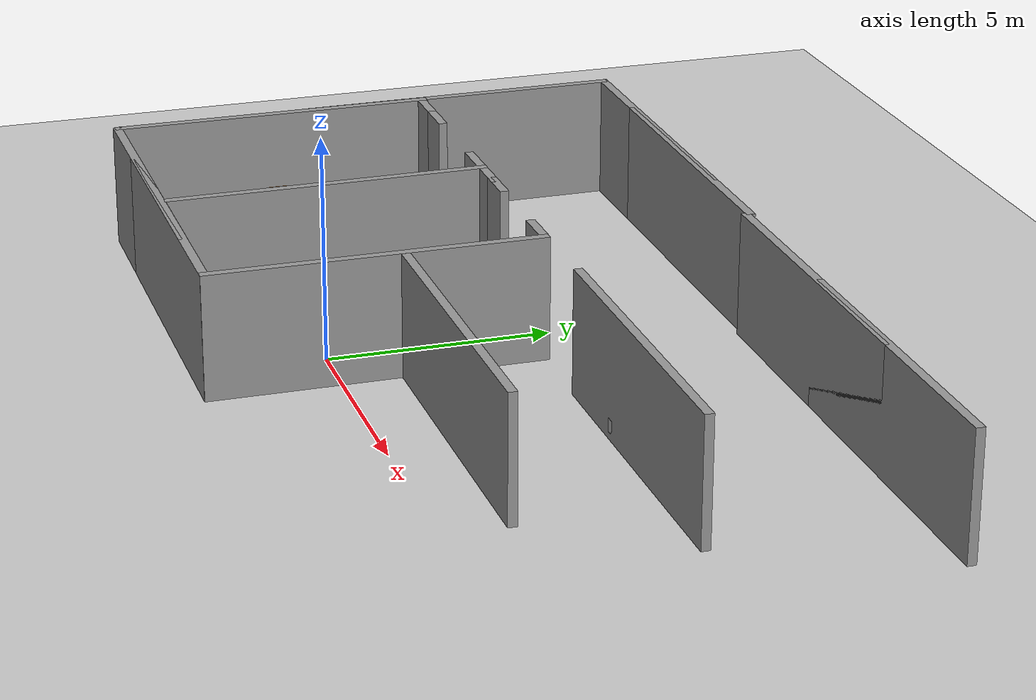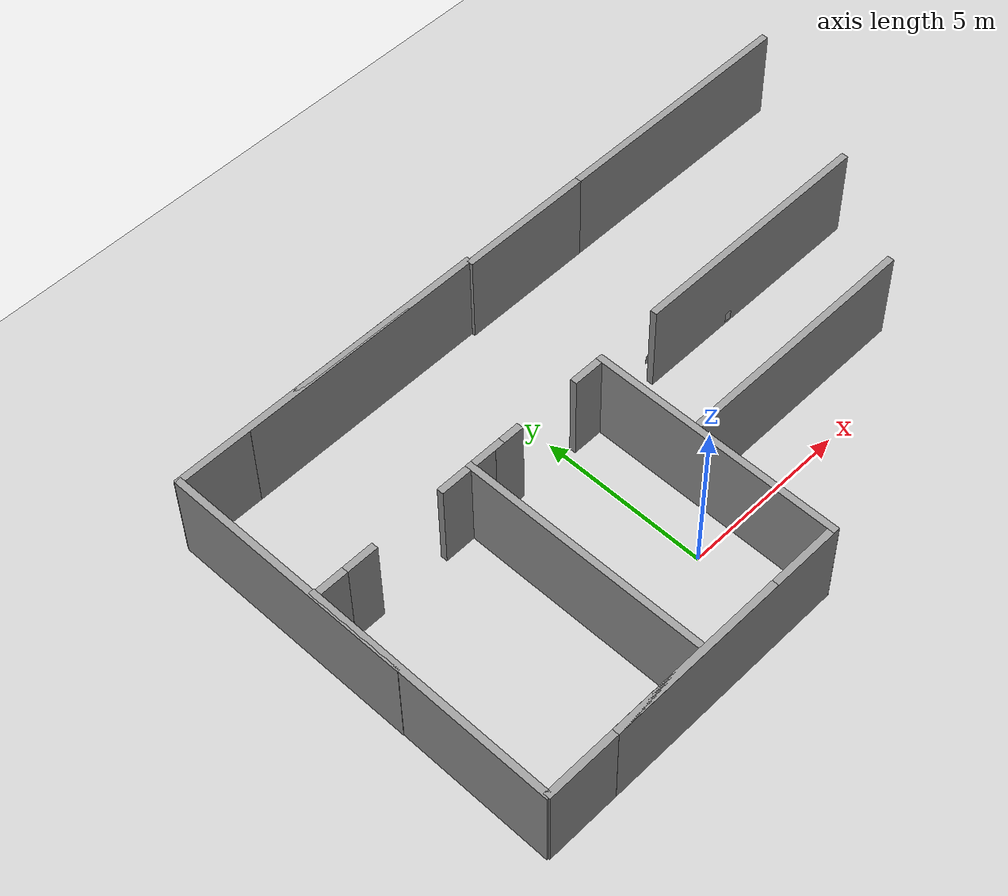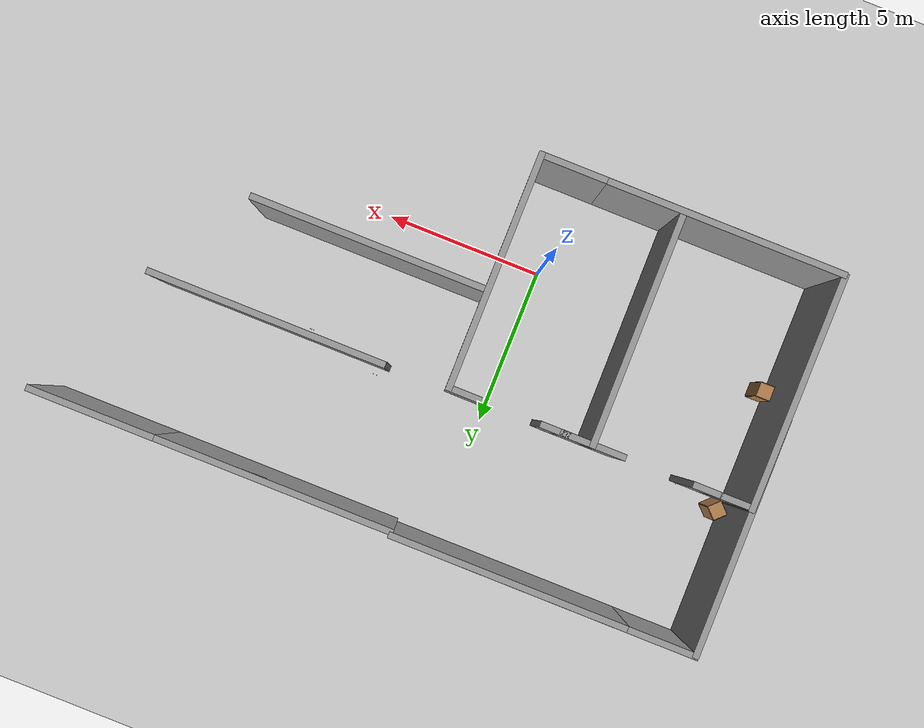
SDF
<sdf version="1.4">
 <world name="default">
  <light name="sun" type="directional">
   <pose>0 0 1 0 -0 0</pose>
   <diffuse>0.8 0.8 0.8 1</diffuse>
   <specular>1 1 1 1</specular>
   <attenuation>
    <range>1000</range>
    <constant>0.9</constant>
    <linear>0.01</linear>
    <quadratic>0.001</quadratic>
   </attenuation>
   <direction>-0 0 -1</direction>
  </light>
  <light name="light_a" type="point">
   <cast_shadows>0</cast_shadows>
   <pose>0 0 1 0 -0 0</pose>
   <diffuse>0.2 0.2 0.2 1</diffuse>
   <specular>1 1 1 1</specular>
   <attenuation>
    <range>1000</range>
    <constant>0.9</constant>
    <linear>0.01</linear>
    <quadratic>0.001</quadratic>
   </attenuation>
   <direction>0 0 -1</direction>
  </light>
  <light name="light_b" type="point">
   <cast_shadows>0</cast_shadows>
   <pose>-7 6 1 0 -0 0</pose>
   <diffuse>0.2 0.2 0.2 0.2</diffuse>
   <specular>0.2 0.2 0.2 0.2</specular>
   <attenuation>
    <range>1000</range>
    <constant>0.9</constant>
    <linear>0.01</linear>
    <quadratic>0.001</quadratic>
   </attenuation>
   <direction>0 0 -1</direction>
  </light>
  <light name="light_c" type="point">
   <cast_shadows>0</cast_shadows>
   <pose>-2.3 6 1 0 -0 0</pose>
   <diffuse>0.2 0.2 0.2 1</diffuse>
   <specular>1 1 1 1</specular>
   <attenuation>
    <range>1000</range>
    <constant>0.9</constant>
    <linear>0.01</linear>
    <quadratic>0.001</quadratic>
   </attenuation>
   <direction>0 0 -1</direction>
  </light>
  <light name="light_d" type="point">
   <cast_shadows>0</cast_shadows>
   <pose>-7 2 1 0 -0 0</pose>
   <diffuse>0.2 0.2 0.2 1</diffuse>
   <specular>1 1 1 1</specular>
   <attenuation>
    <range>1000</range>
    <constant>0.9</constant>
    <linear>0.01</linear>
    <quadratic>0.001</quadratic>
   </attenuation>
   <direction>0 0 -1</direction>
  </light>
  <model name="ground_plane">
   <static>1</static>
   <link name="link">
    <collision name="collision">
     <geometry><plane><normal>0 0 1</normal><size>100 100</size></plane></geometry>
     <surface><friction><ode><mu>100</mu><mu2>50</mu2></ode></friction></surface>
    </collision>
    <visual name="visual">
     <cast_shadows>0</cast_shadows>
     <geometry><plane><normal>0 0 1</normal><size>100 100</size></plane></geometry>
     <material>
      <script><uri>file://media/materials/scripts/gazebo.material</uri><name>Gazebo/Grey</name></script>
     </material>
    </visual>
    <velocity_decay><linear>0</linear><angular>0</angular></velocity_decay>
   </link>
  </model>
  <physics type="ode">
   <max_step_size>0.001</max_step_size>
   <real_time_factor>1</real_time_factor>
   <real_time_update_rate>1000</real_time_update_rate>
   <gravity>0 0 -9.8</gravity>
  </physics>
  <scene><ambient>0.4 0.4 0.4 1</ambient><background>0.7 0.7 0.7 1</background><shadows>1</shadows></scene>
  <spherical_coordinates>
   <surface_model>EARTH_WGS84</surface_model>
   <latitude_deg>0</latitude_deg>
   <longitude_deg>0</longitude_deg>
   <elevation>0</elevation>
   <heading_deg>0</heading_deg>
  </spherical_coordinates>
  <model name="grey_wall_0">
   <static>1</static>
   <link name="link">
    <pose>0 0 1.4 0 -0 0</pose>
    <collision name="collision"><geometry><box><size>7.5 0.2 2.8</size></box></geometry></collision>
    <visual name="visual">
     <cast_shadows>0</cast_shadows>
     <geometry><box><size>7.5 0.2 2.8</size></box></geometry>
     <material>
      <script>
       <uri>model://grey_wall/materials/scripts</uri>
       <uri>model://grey_wall/materials/textures</uri>
       <name>vrc/grey_wall</name>
      </script>
     </material>
    </visual>
    <velocity_decay><linear>0</linear><angular>0</angular></velocity_decay>
   </link>
   <pose>-4.53321 -2.83506 0 0 -0 0</pose>
  </model>
  <model name="grey_wall_1">
   <static>1</static>
   <link name="link">
    <pose>0 0 1.4 0 -0 0</pose>
    <collision name="collision"><geometry><box><size>7.5 0.2 2.8</size></box></geometry></collision>
    <visual name="visual">
     <cast_shadows>0</cast_shadows>
     <geometry><box><size>7.5 0.2 2.8</size></box></geometry>
     <material>
      <script>
       <uri>model://grey_wall/materials/scripts</uri>
       <uri>model://grey_wall/materials/textures</uri>
       <name>vrc/grey_wall</name>
      </script>
     </material>
    </visual>
    <velocity_decay><linear>0</linear><angular>0</angular></velocity_decay>
   </link>
   <pose>-8.23248 0.854179 0 0 0 -1.57181</pose>
  </model>
  <model name="grey_wall_2">
   <static>1</static>
   <link name="link">
    <pose>0 0 1.4 0 -0 0</pose>
    <collision name="collision"><geometry><box><size>7.5 0.2 2.8</size></box></geometry></collision>
    <visual name="visual">
     <cast_shadows>0</cast_shadows>
     <geometry><box><size>7.5 0.2 2.8</size></box></geometry>
     <material>
      <script>
       <uri>model://grey_wall/materials/scripts</uri>
       <uri>model://grey_wall/materials/textures</uri>
       <name>vrc/grey_wall</name>
      </script>
     </material>
    </visual>
    <velocity_decay><linear>0</linear><angular>0</angular></velocity_decay>
   </link>
   <pose>-3.20895 0.824081 0 0 -0 1.57557</pose>
  </model>
  <model name="grey_wall_3">
   <static>1</static>
   <link name="link">
    <pose>0 0 1.4 0 -0 0</pose>
    <collision name="collision"><geometry><box><size>7.5 0.2 2.8</size></box></geometry></collision>
    <visual name="visual">
     <cast_shadows>0</cast_shadows>
     <geometry><box><size>7.5 0.2 2.8</size></box></geometry>
     <material>
      <script>
       <uri>model://grey_wall/materials/scripts</uri>
       <uri>model://grey_wall/materials/textures</uri>
       <name>vrc/grey_wall</name>
      </script>
     </material>
    </visual>
    <velocity_decay><linear>0</linear><angular>0</angular></velocity_decay>
   </link>
   <pose>1.28759 0.815408 0.00212 0 0 -1.57102</pose>
  </model>
  <model name="grey_wall_4">
   <static>1</static>
   <link name="link">
    <pose>0 0 1.4 0 -0 0</pose>
    <collision name="collision"><geometry><box><size>7.5 0.2 2.8</size></box></geometry></collision>
    <visual name="visual">
     <cast_shadows>0</cast_shadows>
     <geometry><box><size>7.5 0.2 2.8</size></box></geometry>
     <material>
      <script>
       <uri>model://grey_wall/materials/scripts</uri>
       <uri>model://grey_wall/materials/textures</uri>
       <name>vrc/grey_wall</name>
      </script>
     </material>
    </visual>
    <velocity_decay><linear>0</linear><angular>0</angular></velocity_decay>
   </link>
   <pose>-2.37715 -2.83764 0 0 -0 0</pose>
  </model>
  <model name="grey_wall_5">
   <static>1</static>
   <link name="link">
    <pose>0 0 1.4 0 -0 0</pose>
    <collision name="collision"><geometry><box><size>7.5 0.2 2.8</size></box></geometry></collision>
    <visual name="visual">
     <cast_shadows>0</cast_shadows>
     <geometry><box><size>7.5 0.2 2.8</size></box></geometry>
     <material>
      <script>
       <uri>model://grey_wall/materials/scripts</uri>
       <uri>model://grey_wall/materials/textures</uri>
       <name>vrc/grey_wall</name>
      </script>
     </material>
    </visual>
    <velocity_decay><linear>0</linear><angular>0</angular></velocity_decay>
   </link>
   <pose>-2.39332 9.09609 0 0 -0 0</pose>
  </model>
  <model name="grey_wall_8">
   <static>1</static>
   <link name="link">
    <pose>0 0 1.4 0 -0 0</pose>
    <collision name="collision"><geometry><box><size>7.5 0.2 2.8</size></box></geometry></collision>
    <visual name="visual">
     <cast_shadows>0</cast_shadows>
     <geometry><box><size>7.5 0.2 2.8</size></box></geometry>
     <material>
      <script>
       <uri>model://grey_wall/materials/scripts</uri>
       <uri>model://grey_wall/materials/textures</uri>
       <name>vrc/grey_wall</name>
      </script>
     </material>
    </visual>
    <velocity_decay><linear>0</linear><angular>0</angular></velocity_decay>
   </link>
   <pose>-8.25909 5.41188 0 0 -0 1.5757</pose>
  </model>
  <model name="grey_wall_9">
   <static>1</static>
   <link name="link">
    <pose>0 0 1.4 0 -0 0</pose>
    <collision name="collision"><geometry><box><size>7.5 0.2 2.8</size></box></geometry></collision>
    <visual name="visual">
     <cast_shadows>0</cast_shadows>
     <geometry><box><size>7.5 0.2 2.8</size></box></geometry>
     <material>
      <script>
       <uri>model://grey_wall/materials/scripts</uri>
       <uri>model://grey_wall/materials/textures</uri>
       <name>vrc/grey_wall</name>
      </script>
     </material>
    </visual>
    <velocity_decay><linear>0</linear><angular>0</angular></velocity_decay>
   </link>
   <pose>-4.6171 9.09785 0 0 -0 0</pose>
  </model>
  <model name="cabinet_0">
   <static>1</static>
   <link name="cabinet_bottom_plate">
    <inertial>
     <pose>0 0 -1 0 -0 0</pose>
     <inertia><ixx>2.05</ixx><ixy>0</ixy><ixz>0</ixz><iyy>2.05</iyy><iyz>0</iyz><izz>2.05</izz></inertia>
     <mass>25</mass>
    </inertial>
    <collision name="cabinet_bottom_plate_geom">
     <pose>0 0 0.01 0 -0 0</pose>
     <geometry><box><size>0.45 0.45 0.02</size></box></geometry>
    </collision>
    <visual name="cabinet_bottom_plate_geom_visual">
     <pose>0 0 0.01 0 -0 0</pose>
     <geometry><box><size>0.45 0.45 0.02</size></box></geometry>
     <material>
      <script><uri>file://media/materials/scripts/gazebo.material</uri><name>Gazebo/Wood</name></script>
     </material>
    </visual>
    <collision name="cabinet_bottom_plate_geom_cabinet_back_plate">
     <pose>0.235 0 0.51 0 -0 0</pose>
     <geometry><box><size>0.02 0.45 1.02</size></box></geometry>
    </collision>
    <visual name="cabinet_bottom_plate_geom_cabinet_back_plate_visual">
     <pose>0.235 0 0.51 0 -0 0</pose>
     <geometry><box><size>0.02 0.45 1.02</size></box></geometry>
     <material>
      <script><uri>file://media/materials/scripts/gazebo.material</uri><name>Gazebo/Wood</name></script>
     </material>
    </visual>
    <collision name="cabinet_bottom_plate_geom_cabinet_left_plate">
     <pose>0 0.235 0.51 0 -0 0</pose>
     <geometry><box><size>0.45 0.02 1.02</size></box></geometry>
    </collision>
    <visual name="cabinet_bottom_plate_geom_cabinet_left_plate_visual">
     <pose>0 0.235 0.51 0 -0 0</pose>
     <geometry><box><size>0.45 0.02 1.02</size></box></geometry>
     <material>
      <script><uri>file://media/materials/scripts/gazebo.material</uri><name>Gazebo/Wood</name></script>
     </material>
    </visual>
    <collision name="cabinet_bottom_plate_geom_cabinet_middle_plate">
     <pose>0 0 0.51 0 -0 0</pose>
     <geometry><box><size>0.45 0.45 0.02</size></box></geometry>
    </collision>
    <visual name="cabinet_bottom_plate_geom_cabinet_middle_plate_visual">
     <pose>0 0 0.51 0 -0 0</pose>
     <geometry><box><size>0.45 0.45 0.02</size></box></geometry>
     <material>
      <script><uri>file://media/materials/scripts/gazebo.material</uri><name>Gazebo/Wood</name></script>
     </material>
    </visual>
    <collision name="cabinet_bottom_plate_geom_cabinet_right_plate">
     <pose>0 -0.235 0.51 0 -0 0</pose>
     <geometry><box><size>0.45 0.02 1.02</size></box></geometry>
    </collision>
    <visual name="cabinet_bottom_plate_geom_cabinet_right_plate_visual">
     <pose>0 -0.235 0.51 0 -0 0</pose>
     <geometry><box><size>0.45 0.02 1.02</size></box></geometry>
     <material>
      <script><uri>file://media/materials/scripts/gazebo.material</uri><name>Gazebo/Wood</name></script>
     </material>
    </visual>
    <collision name="cabinet_bottom_plate_geom_cabinet_top_plate">
     <pose>0 0 1.01 0 -0 0</pose>
     <geometry><box><size>0.45 0.45 0.02</size></box></geometry>
    </collision>
    <visual name="cabinet_bottom_plate_geom_cabinet_top_plate_visual">
     <pose>0 0 1.01 0 -0 0</pose>
     <geometry><box><size>0.45 0.45 0.02</size></box></geometry>
     <material>
      <script><uri>file://media/materials/scripts/gazebo.material</uri><name>Gazebo/Wood</name></script>
     </material>
    </visual>
    <velocity_decay><linear>0</linear><angular>0</angular></velocity_decay>
   </link>
   <pose>-7.86683 0.925523 0 0 -0 0</pose>
  </model>
  <model name="grey_wall_small">
   <static>1</static>
   <link name="link">
    <pose>0 0 1.4 0 -0 0</pose>
    <collision name="collision"><geometry><box><size>0.9375 0.2 2.8</size></box></geometry></collision>
    <visual name="visual">
     <cast_shadows>0</cast_shadows>
     <geometry><box><size>0.9375 0.2 2.8</size></box></geometry>
     <material>
      <script>
       <uri>model://grey_wall_small/materials/scripts</uri>
       <uri>model://grey_wall_small/materials/textures</uri>
       <name>vrc/grey_wall_small</name>
      </script>
     </material>
    </visual>
    <velocity_decay><linear>0</linear><angular>0</angular></velocity_decay>
   </link>
   <pose>-2.66651 4.47404 0 0 -0 0</pose>
  </model>
  <model name="grey_wall_small_0">
   <static>1</static>
   <link name="link">
    <pose>0 0 1.4 0 -0 0</pose>
    <collision name="collision"><geometry><box><size>0.9375 0.2 2.8</size></box></geometry></collision>
    <visual name="visual">
     <cast_shadows>0</cast_shadows>
     <geometry><box><size>0.9375 0.2 2.8</size></box></geometry>
     <material>
      <script>
       <uri>model://grey_wall_small/materials/scripts</uri>
       <uri>model://grey_wall_small/materials/textures</uri>
       <name>vrc/grey_wall_small</name>
      </script>
     </material>
    </visual>
    <velocity_decay><linear>0</linear><angular>0</angular></velocity_decay>
   </link>
   <pose>-3.79075 4.47218 0 0 -0 0</pose>
  </model>
  <model name="grey_wall_small_1">
   <static>1</static>
   <link name="link">
    <pose>0 0 1.4 0 -0 0</pose>
    <collision name="collision"><geometry><box><size>0.9375 0.2 2.8</size></box></geometry></collision>
    <visual name="visual">
     <cast_shadows>0</cast_shadows>
     <geometry><box><size>0.9375 0.2 2.8</size></box></geometry>
     <material>
      <script>
       <uri>model://grey_wall_small/materials/scripts</uri>
       <uri>model://grey_wall_small/materials/textures</uri>
       <name>vrc/grey_wall_small</name>
      </script>
     </material>
    </visual>
    <velocity_decay><linear>0</linear><angular>0</angular></velocity_decay>
   </link>
   <pose>-2.03511 4.47305 0 0 -0 0</pose>
  </model>
  <model name="grey_wall_small_2">
   <static>1</static>
   <link name="link">
    <pose>0 0 1.4 0 -0 0</pose>
    <collision name="collision"><geometry><box><size>0.9375 0.2 2.8</size></box></geometry></collision>
    <visual name="visual">
     <cast_shadows>0</cast_shadows>
     <geometry><box><size>0.9375 0.2 2.8</size></box></geometry>
     <material>
      <script>
       <uri>model://grey_wall_small/materials/scripts</uri>
       <uri>model://grey_wall_small/materials/textures</uri>
       <name>vrc/grey_wall_small</name>
      </script>
     </material>
    </visual>
    <velocity_decay><linear>0</linear><angular>0</angular></velocity_decay>
   </link>
   <pose>0.747906 4.47091 0 0 -0 0</pose>
  </model>
  <model name="grey_wall_small_3">
   <static>1</static>
   <link name="link">
    <pose>0 0 1.4 0 -0 0</pose>
    <collision name="collision"><geometry><box><size>0.9375 0.2 2.8</size></box></geometry></collision>
    <visual name="visual">
     <cast_shadows>0</cast_shadows>
     <geometry><box><size>0.9375 0.2 2.8</size></box></geometry>
     <material>
      <script>
       <uri>model://grey_wall_small/materials/scripts</uri>
       <uri>model://grey_wall_small/materials/textures</uri>
       <name>vrc/grey_wall_small</name>
      </script>
     </material>
    </visual>
    <velocity_decay><linear>0</linear><angular>0</angular></velocity_decay>
   </link>
   <pose>-7.6898 4.46929 0 0 -0 0</pose>
  </model>
  <model name="grey_wall_small_4">
   <static>1</static>
   <link name="link">
    <pose>0 0 1.4 0 -0 0</pose>
    <collision name="collision"><geometry><box><size>0.9375 0.2 2.8</size></box></geometry></collision>
    <visual name="visual">
     <cast_shadows>0</cast_shadows>
     <geometry><box><size>0.9375 0.2 2.8</size></box></geometry>
     <material>
      <script>
       <uri>model://grey_wall_small/materials/scripts</uri>
       <uri>model://grey_wall_small/materials/textures</uri>
       <name>vrc/grey_wall_small</name>
      </script>
     </material>
    </visual>
    <velocity_decay><linear>0</linear><angular>0</angular></velocity_decay>
   </link>
   <pose>-6.82457 4.46929 0 0 -0 0</pose>
  </model>
  <model name="red_image">
   <static>1</static>
   <link name="link">
    <collision name="collision">
     <geometry><plane><normal>0 0 1</normal><size>0.21 0.16</size></plane></geometry>
     <surface><friction><ode><mu>100</mu><mu2>50</mu2></ode></friction></surface>
    </collision>
    <visual name="visual">
     <pose>-6.48 4.6 0.4 1.57 4.33681e-19 3.14</pose>
     <cast_shadows>0</cast_shadows>
     <geometry><plane><normal>0 0 1</normal><size>0.21 0.16</size></plane></geometry>
     <material>
      <script>
       <uri>model://red_image/materials/scripts</uri>
       <uri>model://red_image/materials/textures</uri>
       <name>red_image/Image</name>
      </script>
     </material>
    </visual>
    <velocity_decay><linear>0</linear><angular>0</angular></velocity_decay>
   </link>
  </model>
  <model name="cabinet_1">
   <static>1</static>
   <link name="cabinet_bottom_plate">
    <inertial>
     <pose>0 0 -1 0 -0 0</pose>
     <inertia><ixx>2.05</ixx><ixy>0</ixy><ixz>0</ixz><iyy>2.05</iyy><iyz>0</iyz><izz>2.05</izz></inertia>
     <mass>25</mass>
    </inertial>
    <collision name="cabinet_bottom_plate_geom">
     <pose>0 0 0.01 0 -0 0</pose>
     <geometry><box><size>0.45 0.45 0.02</size></box></geometry>
    </collision>
    <visual name="cabinet_bottom_plate_geom_visual">
     <pose>0 0 0.01 0 -0 0</pose>
     <geometry><box><size>0.45 0.45 0.02</size></box></geometry>
     <material>
      <script><uri>file://media/materials/scripts/gazebo.material</uri><name>Gazebo/Wood</name></script>
     </material>
    </visual>
    <collision name="cabinet_bottom_plate_geom_cabinet_back_plate">
     <pose>0.235 0 0.51 0 -0 0</pose>
     <geometry><box><size>0.02 0.45 1.02</size></box></geometry>
    </collision>
    <visual name="cabinet_bottom_plate_geom_cabinet_back_plate_visual">
     <pose>0.235 0 0.51 0 -0 0</pose>
     <geometry><box><size>0.02 0.45 1.02</size></box></geometry>
     <material>
      <script><uri>file://media/materials/scripts/gazebo.material</uri><name>Gazebo/Wood</name></script>
     </material>
    </visual>
    <collision name="cabinet_bottom_plate_geom_cabinet_left_plate">
     <pose>0 0.235 0.51 0 -0 0</pose>
     <geometry><box><size>0.45 0.02 1.02</size></box></geometry>
    </collision>
    <visual name="cabinet_bottom_plate_geom_cabinet_left_plate_visual">
     <pose>0 0.235 0.51 0 -0 0</pose>
     <geometry><box><size>0.45 0.02 1.02</size></box></geometry>
     <material>
      <script><uri>file://media/materials/scripts/gazebo.material</uri><name>Gazebo/Wood</name></script>
     </material>
    </visual>
    <collision name="cabinet_bottom_plate_geom_cabinet_middle_plate">
     <pose>0 0 0.51 0 -0 0</pose>
     <geometry><box><size>0.45 0.45 0.02</size></box></geometry>
    </collision>
    <visual name="cabinet_bottom_plate_geom_cabinet_middle_plate_visual">
     <pose>0 0 0.51 0 -0 0</pose>
     <geometry><box><size>0.45 0.45 0.02</size></box></geometry>
     <material>
      <script><uri>file://media/materials/scripts/gazebo.material</uri><name>Gazebo/Wood</name></script>
     </material>
    </visual>
    <collision name="cabinet_bottom_plate_geom_cabinet_right_plate">
     <pose>0 -0.235 0.51 0 -0 0</pose>
     <geometry><box><size>0.45 0.02 1.02</size></box></geometry>
    </collision>
    <visual name="cabinet_bottom_plate_geom_cabinet_right_plate_visual">
     <pose>0 -0.235 0.51 0 -0 0</pose>
     <geometry><box><size>0.45 0.02 1.02</size></box></geometry>
     <material>
      <script><uri>file://media/materials/scripts/gazebo.material</uri><name>Gazebo/Wood</name></script>
     </material>
    </visual>
    <collision name="cabinet_bottom_plate_geom_cabinet_top_plate">
     <pose>0 0 1.01 0 -0 0</pose>
     <geometry><box><size>0.45 0.45 0.02</size></box></geometry>
    </collision>
    <visual name="cabinet_bottom_plate_geom_cabinet_top_plate_visual">
     <pose>0 0 1.01 0 -0 0</pose>
     <geometry><box><size>0.45 0.45 0.02</size></box></geometry>
     <material>
      <script><uri>file://media/materials/scripts/gazebo.material</uri><name>Gazebo/Wood</name></script>
     </material>
    </visual>
    <velocity_decay><linear>0</linear><angular>0</angular></velocity_decay>
   </link>
   <pose>-7.8455 4.90192 0 0 -0 0.78721</pose>
  </model>
  <model name="grey_wall_6">
   <static>1</static>
   <link name="link">
    <pose>0 0 1.4 0 -0 0</pose>
    <collision name="collision"><geometry><box><size>7.5 0.2 2.8</size></box></geometry></collision>
    <visual name="visual">
     <cast_shadows>0</cast_shadows>
     <geometry><box><size>7.5 0.2 2.8</size></box></geometry>
     <material>
      <script>
       <uri>model://grey_wall/materials/scripts</uri>
       <uri>model://grey_wall/materials/textures</uri>
       <name>vrc/grey_wall</name>
      </script>
     </material>
    </visual>
    <velocity_decay><linear>0</linear><angular>0</angular></velocity_decay>
   </link>
   <pose>7 4.54099 0 0 -0 0</pose>
  </model>
  <model name="grey_wall_7">
   <static>1</static>
   <link name="link">
    <pose>0 0 1.4 0 -0 0</pose>
    <collision name="collision"><geometry><box><size>7.5 0.2 2.8</size></box></geometry></collision>
    <visual name="visual">
     <cast_shadows>0</cast_shadows>
     <geometry><box><size>7.5 0.2 2.8</size></box></geometry>
     <material>
      <script>
       <uri>model://grey_wall/materials/scripts</uri>
       <uri>model://grey_wall/materials/textures</uri>
       <name>vrc/grey_wall</name>
      </script>
     </material>
    </visual>
    <velocity_decay><linear>0</linear><angular>0</angular></velocity_decay>
   </link>
   <pose>5 9 0 0 -0 0</pose>
  </model>
  <model name="grey_wall_10">
   <static>1</static>
   <link name="link">
    <pose>0 0 1.4 0 -0 0</pose>
    <collision name="collision"><geometry><box><size>7.5 0.2 2.8</size></box></geometry></collision>
    <visual name="visual">
     <cast_shadows>0</cast_shadows>
     <geometry><box><size>7.5 0.2 2.8</size></box></geometry>
     <material>
      <script>
       <uri>model://grey_wall/materials/scripts</uri>
       <uri>model://grey_wall/materials/textures</uri>
       <name>vrc/grey_wall</name>
      </script>
     </material>
    </visual>
    <velocity_decay><linear>0</linear><angular>0</angular></velocity_decay>
   </link>
   <pose>9 9 0 0 -0 0</pose>
  </model>
  <model name="grey_wall_11">
   <static>1</static>
   <link name="link">
    <pose>0 0 1.4 0 -0 0</pose>
    <collision name="collision"><geometry><box><size>7.5 0.2 2.8</size></box></geometry></collision>
    <visual name="visual">
     <cast_shadows>0</cast_shadows>
     <geometry><box><size>7.5 0.2 2.8</size></box></geometry>
     <material>
      <script>
       <uri>model://grey_wall/materials/scripts</uri>
       <uri>model://grey_wall/materials/textures</uri>
       <name>vrc/grey_wall</name>
      </script>
     </material>
    </visual>
    <velocity_decay><linear>0</linear><angular>0</angular></velocity_decay>
   </link>
   <pose>5 1.40994 0 0 -0 0</pose>
  </model>
  <model name="green_image_2">
   <static>0</static>
   <link name="link">
    <collision name="collision">
     <geometry><box><size>0.2 0.2 0.02</size></box></geometry>
     <surface><friction><ode><mu>100</mu><mu2>50</mu2></ode></friction></surface>
    </collision>
    <visual name="visual">
     <pose>0 -0.11 0.4 1.57 1.57 3.14</pose>
     <cast_shadows>0</cast_shadows>
     <geometry><plane><normal>0 0 1</normal><size>0.297 0.21</size></plane></geometry>
     <material>
      <script>
       <uri>model://green_image/materials/scripts</uri>
       <uri>model://green_image/materials/textures</uri>
       <name>green_image/Image</name>
      </script>
     </material>
    </visual>
    <velocity_decay><linear>0</linear><angular>0</angular></velocity_decay>
    <inertial>
     <inertia><ixx>1</ixx><ixy>0</ixy><ixz>0</ixz><iyy>1</iyy><iyz>0</iyz><izz>1</izz></inertia>
     <mass>1</mass>
    </inertial>
   </link>
   <pose>3.57276 5 0.009992 -3e-06 1e-06 4.03897e-28</pose>
  </model>
  <model name="cluedo_character">
   <static>0</static>
   <link name="link">
    <collision name="collision">
     <geometry><box><size>0.2 0.2 0.2</size></box></geometry>
     <surface><friction><ode><mu>100</mu><mu2>50</mu2></ode></friction></surface>
    </collision>
    <visual name="visual">
     <pose>-1 -0.7 0.4 1.57 -0 0</pose>
     <cast_shadows>0</cast_shadows>
     <geometry><plane><normal>0 0 1</normal><size>0.21 0.297</size></plane></geometry>
     <material>
      <script>
       <uri>model://cluedo_character/materials/scripts</uri>
       <uri>model://cluedo_character/materials/textures</uri>
       <name>Cluedo_character/Image</name>
      </script>
     </material>
    </visual>
    <velocity_decay><linear>0</linear><angular>0</angular></velocity_decay>
    <inertial>
     <inertia><ixx>1</ixx><ixy>0</ixy><ixz>0</ixz><iyy>1</iyy><iyz>0</iyz><izz>1</izz></inertia>
     <mass>1</mass>
    </inertial>
   </link>
   <pose>7 5 0.1 0 -0 2e-06</pose>
  </model>
  <model name="red_image_flip_18">
   <static>0</static>
   <link name="link">
    <collision name="collision">
     <geometry><box><size>0.01 0.01 0.05</size></box></geometry>
     <surface><friction><ode><mu>100</mu><mu2>50</mu2></ode></friction></surface>
    </collision>
    <visual name="visual">
     <pose>0 0 0.75 1.57 1.57 3.14</pose>
     <cast_shadows>0</cast_shadows>
     <geometry><plane><normal>0 0 1</normal><size>0.297 0.21</size></plane></geometry>
     <material>
      <script>
       <uri>model://red_image/materials/scripts</uri>
       <uri>model://red_image/materials/textures</uri>
       <name>red_image/Image</name>
      </script>
     </material>
    </visual>
    <velocity_decay><linear>0</linear><angular>0</angular></velocity_decay>
    <inertial>
     <inertia><ixx>1</ixx><ixy>0</ixy><ixz>0</ixz><iyy>1</iyy><iyz>0</iyz><izz>1</izz></inertia>
     <mass>1</mass>
    </inertial>
   </link>
   <pose>0.999999 4.57898 0.025 -5.7e-05 -2.1e-05 0</pose>
  </model>
  <model name="red_image_flip_19">
   <static>0</static>
   <link name="link">
    <collision name="collision">
     <geometry><box><size>0.01 0.01 0.05</size></box></geometry>
     <surface><friction><ode><mu>100</mu><mu2>50</mu2></ode></friction></surface>
    </collision>
    <visual name="visual">
     <pose>0 0 0.15 1.57 1.57 3.14</pose>
     <cast_shadows>0</cast_shadows>
     <geometry><plane><normal>0 0 1</normal><size>0.297 0.21</size></plane></geometry>
     <material>
      <script>
       <uri>model://red_image/materials/scripts</uri>
       <uri>model://red_image/materials/textures</uri>
       <name>red_image/Image</name>
      </script>
     </material>
    </visual>
    <velocity_decay><linear>0</linear><angular>0</angular></velocity_decay>
    <inertial>
     <inertia><ixx>1</ixx><ixy>0</ixy><ixz>0</ixz><iyy>1</iyy><iyz>0</iyz><izz>1</izz></inertia>
     <mass>1</mass>
    </inertial>
   </link>
   <pose>-2.00002 4.57818 0.025004 -0.000871 3.3e-05 -0.021148</pose>
  </model>
 </world>
</sdf>
